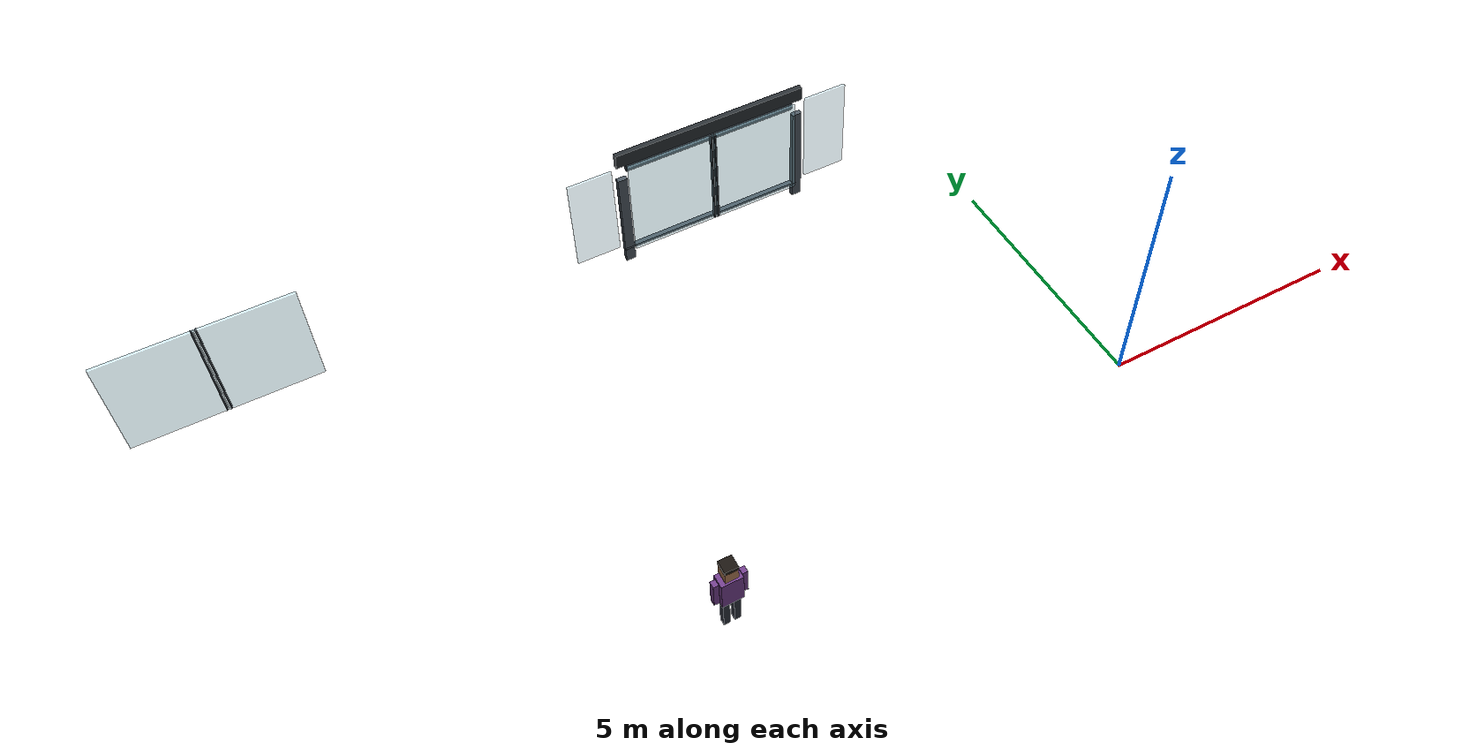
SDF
<sdf version="1.8">
 <world name="metro_station">
  <model name="psd_unit_06">
   <static>true</static>
   <pose>-5.0 0 0 0 0 0</pose>
   <link name="psd_frame_06">
    <collision name="psd_post_left_col_06">
     <pose>-1.90 7.02 1.10 0 0 0</pose>
     <geometry><box><size>0.20 0.10 2.20</size></box></geometry>
    </collision>
    <collision name="psd_post_right_col_06">
     <pose>1.90 7.02 1.10 0 0 0</pose>
     <geometry><box><size>0.20 0.10 2.20</size></box></geometry>
    </collision>
    <collision name="psd_header_col_06">
     <pose>0 7.02 2.70 0 0 0</pose>
     <geometry><box><size>4.00 0.10 0.30</size></box></geometry>
    </collision>
    <collision name="psd_threshold_col_06">
     <pose>0 7.02 0.325 0 0 0</pose>
     <geometry><box><size>4.00 0.10 0.05</size></box></geometry>
    </collision>
    <visual name="psd_post_left_vis_06">
     <pose>-1.90 7.02 1.10 0 0 0</pose>
     <geometry><box><size>0.20 0.10 2.20</size></box></geometry>
     <material>
      <ambient>0.22 0.25 0.28 1</ambient>
      <diffuse>0.30 0.34 0.38 1</diffuse>
      <specular>0.35 0.35 0.35 1</specular>
     </material>
    </visual>
    <visual name="psd_post_right_vis_06">
     <pose>1.90 7.02 1.10 0 0 0</pose>
     <geometry><box><size>0.20 0.10 2.20</size></box></geometry>
     <material>
      <ambient>0.22 0.25 0.28 1</ambient>
      <diffuse>0.30 0.34 0.38 1</diffuse>
      <specular>0.35 0.35 0.35 1</specular>
     </material>
    </visual>
    <visual name="psd_header_vis_06">
     <pose>0 7.02 2.70 0 0 0</pose>
     <geometry><box><size>4.00 0.10 0.30</size></box></geometry>
     <material><ambient>0.10 0.12 0.14 1</ambient><diffuse>0.16 0.18 0.20 1</diffuse></material>
    </visual>
    <visual name="psd_threshold_vis_06">
     <pose>0 7.02 0.325 0 0 0</pose>
     <geometry><box><size>4.00 0.10 0.05</size></box></geometry>
     <material>
      <ambient>0.22 0.25 0.28 1</ambient>
      <diffuse>0.30 0.34 0.38 1</diffuse>
      <specular>0.35 0.35 0.35 1</specular>
     </material>
    </visual>
    <visual name="psd_glass_left_vis_06">
     <pose>-2.55 7.02 1.45 0 0 0</pose>
     <transparency>0.65</transparency>
     <geometry><box><size>0.90 0.05 2.05</size></box></geometry>
     <material><ambient>0.55 0.75 0.82 1</ambient><diffuse>0.65 0.85 0.92 1</diffuse></material>
    </visual>
    <visual name="psd_glass_right_vis_06">
     <pose>2.55 7.02 1.45 0 0 0</pose>
     <transparency>0.65</transparency>
     <geometry><box><size>0.90 0.05 2.05</size></box></geometry>
     <material><ambient>0.55 0.75 0.82 1</ambient><diffuse>0.65 0.85 0.92 1</diffuse></material>
    </visual>
    <visual name="psd_unit_label_vis_06">
     <pose>0 7.10 2.70 0 0 0</pose>
     <geometry><box><size>0.30 0.02 0.16</size></box></geometry>
     <material>
      <ambient>0.95 0.72 0.04 1</ambient>
      <diffuse>0.98 0.78 0.08 1</diffuse>
      <emissive>0.35 0.25 0.02 1</emissive>
     </material>
    </visual>
    <visual name="psd_upper_panel_vis_06">
     <pose>0 7.02 2.46 0 0 0</pose>
     <geometry><box><size>3.60 0.06 0.18</size></box></geometry>
     <material>
      <ambient>0.22 0.25 0.28 1</ambient>
      <diffuse>0.30 0.34 0.38 1</diffuse>
      <specular>0.35 0.35 0.35 1</specular>
     </material>
    </visual>
   </link>
  </model>
  <model name="psd_door_05">
   <static>false</static>
   <allow_auto_disable>false</allow_auto_disable>
   <pose>-15.0 0 0 0 0 0</pose>
   <link name="psd_base_05">
    <inertial>
     <mass>1.0</mass>
     <inertia><ixx>0.001</ixx><ixy>0</ixy><ixz>0</ixz><iyy>0.001</iyy><iyz>0</iyz><izz>0.001</izz></inertia>
    </inertial>
   </link>
   <link name="psd_left_05">
    <pose>-0.90 6.90 1.45 0 0 0</pose>
    <inertial>
     <mass>120.0</mass>
     <inertia><ixx>48.436</ixx><ixy>0</ixy><ixz>0</ixz><iyy>80.800</iyy><iyz>0</iyz><izz>32.436</izz></inertia>
    </inertial>
    <collision name="psd_left_col_05"><geometry><box><size>1.80 0.06 2.20</size></box></geometry></collision>
    <visual name="psd_left_vis_05">
     <transparency>0.6</transparency>
     <geometry><box><size>1.80 0.06 2.20</size></box></geometry>
     <material><ambient>0.55 0.78 0.85 1</ambient><diffuse>0.65 0.88 0.95 1</diffuse></material>
    </visual>
    <visual name="psd_left_edge_vis_05">
     <pose>0.86 0 0 0 0 0</pose>
     <geometry><box><size>0.03 0.08 2.20</size></box></geometry>
     <material><ambient>0.15 0.18 0.20 1</ambient><diffuse>0.22 0.25 0.28 1</diffuse></material>
    </visual>
   </link>
   <link name="psd_right_05">
    <pose>0.90 6.90 1.45 0 0 0</pose>
    <inertial>
     <mass>120.0</mass>
     <inertia><ixx>48.436</ixx><ixy>0</ixy><ixz>0</ixz><iyy>80.800</iyy><iyz>0</iyz><izz>32.436</izz></inertia>
    </inertial>
    <collision name="psd_right_col_05"><geometry><box><size>1.80 0.06 2.20</size></box></geometry></collision>
    <visual name="psd_right_vis_05">
     <transparency>0.6</transparency>
     <geometry><box><size>1.80 0.06 2.20</size></box></geometry>
     <material><ambient>0.55 0.78 0.85 1</ambient><diffuse>0.65 0.88 0.95 1</diffuse></material>
    </visual>
    <visual name="psd_right_edge_vis_05">
     <pose>-0.86 0 0 0 0 0</pose>
     <geometry><box><size>0.03 0.08 2.20</size></box></geometry>
     <material><ambient>0.15 0.18 0.20 1</ambient><diffuse>0.22 0.25 0.28 1</diffuse></material>
    </visual>
   </link>
   <joint name="psd_base_fixed_05" type="fixed"><parent>world</parent><child>psd_base_05</child></joint>
   <joint name="psd_left_joint_05" type="prismatic">
    <parent>psd_base_05</parent>
    <child>psd_left_05</child>
    <axis>
     <xyz>1 0 0</xyz>
     <limit><lower>-1.80</lower><upper>0.0</upper><effort>5000.0</effort><velocity>1.0</velocity></limit>
     <dynamics><damping>2.0</damping><friction>0.2</friction></dynamics>
    </axis>
   </joint>
   <joint name="psd_right_joint_05" type="prismatic">
    <parent>psd_base_05</parent>
    <child>psd_right_05</child>
    <axis>
     <xyz>1 0 0</xyz>
     <limit><lower>0.0</lower><upper>1.80</upper><effort>5000.0</effort><velocity>1.0</velocity></limit>
     <dynamics><damping>2.0</damping><friction>0.2</friction></dynamics>
    </axis>
   </joint>
  </model>
  <model name="psd_door_06">
   <static>false</static>
   <allow_auto_disable>false</allow_auto_disable>
   <pose>-5.0 0 0 0 0 0</pose>
   <link name="psd_base_06">
    <inertial>
     <mass>1.0</mass>
     <inertia><ixx>0.001</ixx><ixy>0</ixy><ixz>0</ixz><iyy>0.001</iyy><iyz>0</iyz><izz>0.001</izz></inertia>
    </inertial>
   </link>
   <link name="psd_left_06">
    <pose>-0.90 6.90 1.45 0 0 0</pose>
    <inertial>
     <mass>120.0</mass>
     <inertia><ixx>48.436</ixx><ixy>0</ixy><ixz>0</ixz><iyy>80.800</iyy><iyz>0</iyz><izz>32.436</izz></inertia>
    </inertial>
    <collision name="psd_left_col_06"><geometry><box><size>1.80 0.06 2.20</size></box></geometry></collision>
    <visual name="psd_left_vis_06">
     <transparency>0.6</transparency>
     <geometry><box><size>1.80 0.06 2.20</size></box></geometry>
     <material><ambient>0.55 0.78 0.85 1</ambient><diffuse>0.65 0.88 0.95 1</diffuse></material>
    </visual>
    <visual name="psd_left_edge_vis_06">
     <pose>0.86 0 0 0 0 0</pose>
     <geometry><box><size>0.03 0.08 2.20</size></box></geometry>
     <material><ambient>0.15 0.18 0.20 1</ambient><diffuse>0.22 0.25 0.28 1</diffuse></material>
    </visual>
   </link>
   <link name="psd_right_06">
    <pose>0.90 6.90 1.45 0 0 0</pose>
    <inertial>
     <mass>120.0</mass>
     <inertia><ixx>48.436</ixx><ixy>0</ixy><ixz>0</ixz><iyy>80.800</iyy><iyz>0</iyz><izz>32.436</izz></inertia>
    </inertial>
    <collision name="psd_right_col_06"><geometry><box><size>1.80 0.06 2.20</size></box></geometry></collision>
    <visual name="psd_right_vis_06">
     <transparency>0.6</transparency>
     <geometry><box><size>1.80 0.06 2.20</size></box></geometry>
     <material><ambient>0.55 0.78 0.85 1</ambient><diffuse>0.65 0.88 0.95 1</diffuse></material>
    </visual>
    <visual name="psd_right_edge_vis_06">
     <pose>-0.86 0 0 0 0 0</pose>
     <geometry><box><size>0.03 0.08 2.20</size></box></geometry>
     <material><ambient>0.15 0.18 0.20 1</ambient><diffuse>0.22 0.25 0.28 1</diffuse></material>
    </visual>
   </link>
   <joint name="psd_base_fixed_06" type="fixed"><parent>world</parent><child>psd_base_06</child></joint>
   <joint name="psd_left_joint_06" type="prismatic">
    <parent>psd_base_06</parent>
    <child>psd_left_06</child>
    <axis>
     <xyz>1 0 0</xyz>
     <limit><lower>-1.80</lower><upper>0.0</upper><effort>5000.0</effort><velocity>1.0</velocity></limit>
     <dynamics><damping>2.0</damping><friction>0.2</friction></dynamics>
    </axis>
   </joint>
   <joint name="psd_right_joint_06" type="prismatic">
    <parent>psd_base_06</parent>
    <child>psd_right_06</child>
    <axis>
     <xyz>1 0 0</xyz>
     <limit><lower>0.0</lower><upper>1.80</upper><effort>5000.0</effort><velocity>1.0</velocity></limit>
     <dynamics><damping>2.0</damping><friction>0.2</friction></dynamics>
    </axis>
   </joint>
  </model>
  <model name="passenger_06">
   <static>true</static>
   <allow_auto_disable>false</allow_auto_disable>
   <pose>-9.0 -1.30 0.30 0 0 0</pose>
   <link name="passenger_body_06">
    <visual name="leg_left_06">
     <pose>-0.10 0 0.36 0 0 0</pose>
     <geometry><box><size>0.12 0.13 0.72</size></box></geometry>
     <material><ambient>0.10 0.12 0.16 1</ambient><diffuse>0.16 0.18 0.22 1</diffuse></material>
    </visual>
    <visual name="leg_right_06">
     <pose>0.10 0 0.36 0 0 0</pose>
     <geometry><box><size>0.12 0.13 0.72</size></box></geometry>
     <material><ambient>0.10 0.12 0.16 1</ambient><diffuse>0.16 0.18 0.22 1</diffuse></material>
    </visual>
    <visual name="torso_06">
     <pose>0 0 1.02 0 0 0</pose>
     <geometry><box><size>0.40 0.26 0.62</size></box></geometry>
     <material><ambient>0.34 0.18 0.42 1</ambient><diffuse>0.44 0.24 0.54 1</diffuse></material>
    </visual>
    <visual name="head_06">
     <pose>0 0 1.52 0 0 0</pose>
     <geometry><box><size>0.24 0.24 0.28</size></box></geometry>
     <material><ambient>0.55 0.38 0.26 1</ambient><diffuse>0.68 0.48 0.33 1</diffuse></material>
    </visual>
    <visual name="hair_06">
     <pose>0 0 1.66 0 0 0</pose>
     <geometry><box><size>0.25 0.25 0.08</size></box></geometry>
     <material><ambient>0.06 0.05 0.04 1</ambient><diffuse>0.10 0.08 0.06 1</diffuse></material>
    </visual>
    <visual name="arm_left_06">
     <pose>-0.26 0 1.04 0 0 0</pose>
     <geometry><box><size>0.10 0.12 0.55</size></box></geometry>
     <material><ambient>0.34 0.18 0.42 1</ambient><diffuse>0.44 0.24 0.54 1</diffuse></material>
    </visual>
    <visual name="arm_right_06">
     <pose>0.26 0 1.04 0 0 0</pose>
     <geometry><box><size>0.10 0.12 0.55</size></box></geometry>
     <material><ambient>0.34 0.18 0.42 1</ambient><diffuse>0.44 0.24 0.54 1</diffuse></material>
    </visual>
   </link>
  </model>
 </world>
</sdf>
